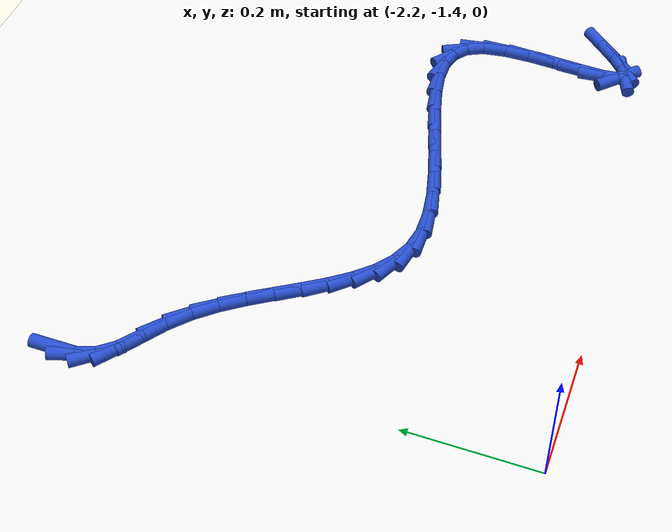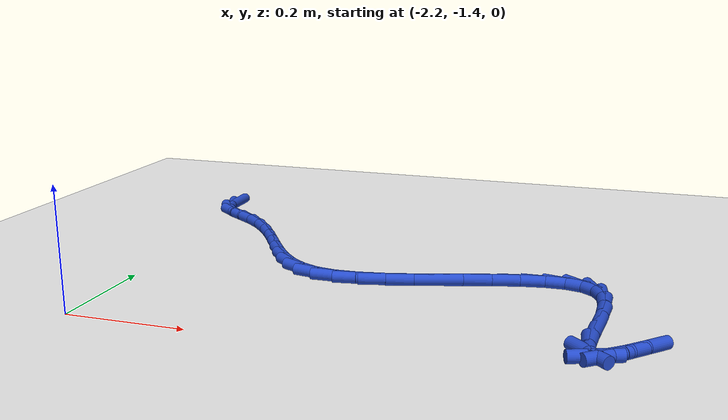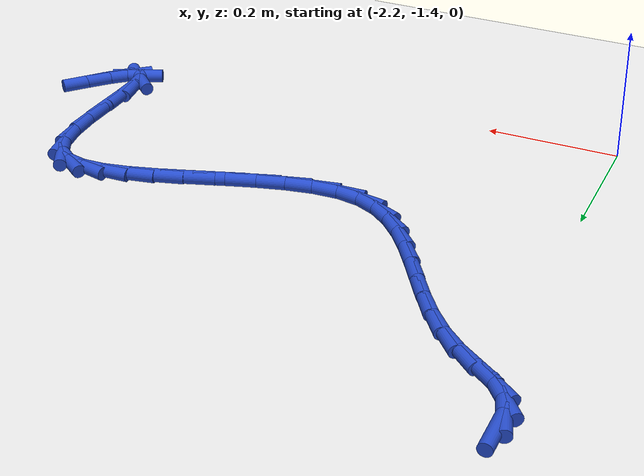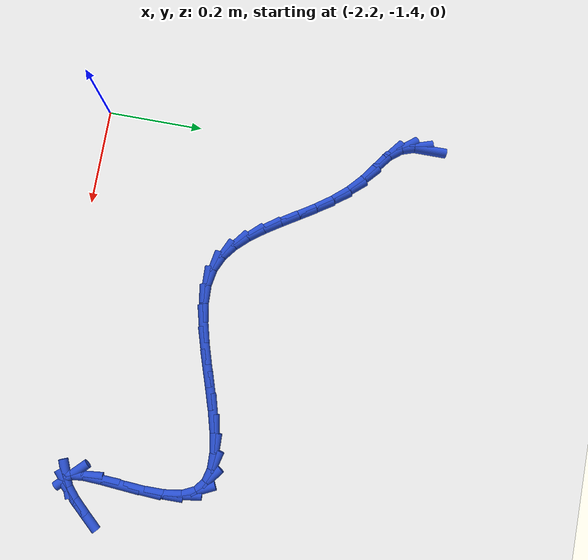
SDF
<sdf version="1.6">
 <world name="default">
  <model name="ground_plane">
   <static>1</static>
   <link name="link">
    <collision name="collision">
     <geometry><plane><normal>0 0 1</normal><size>100 100</size></plane></geometry>
     <surface><friction><ode><mu>100</mu><mu2>50</mu2></ode></friction></surface>
    </collision>
    <visual name="visual">
     <cast_shadows>0</cast_shadows>
     <geometry><plane><normal>0 0 1</normal><size>100 100</size></plane></geometry>
     <material>
      <script><uri>file://media/materials/scripts/gazebo.material</uri><name>Gazebo/WhiteGlow</name></script>
     </material>
    </visual>
   </link>
  </model>
  <model name="line">
   <link name="link_133">
    <pose>-2.2366250145057704 -0.7151494093226063 0.01 0 1.57 -1.5692445474474548</pose>
    <collision name="collision">
     <geometry><cylinder><radius>0.01</radius><length>0.08</length></cylinder></geometry>
    </collision>
    <visual name="visual">
     <material>
      <script><name>Gazebo/Blue</name><uri>file://media/materials/scripts/gazebo.material</uri></script>
     </material>
     <geometry><cylinder><radius>0.01</radius><length>0.08</length></cylinder></geometry>
    </visual>
   </link>
   <link name="link_134">
    <pose>-2.2365803930774857 -0.7439043947152794 0.01 0 1.57 -1.2466053743810555</pose>
    <collision name="collision">
     <geometry><cylinder><radius>0.01</radius><length>0.08</length></cylinder></geometry>
    </collision>
    <visual name="visual">
     <material>
      <script><name>Gazebo/Blue</name><uri>file://media/materials/scripts/gazebo.material</uri></script>
     </material>
     <geometry><cylinder><radius>0.01</radius><length>0.08</length></cylinder></geometry>
    </visual>
   </link>
   <link name="link_135">
    <pose>-2.227726745637273 -0.7702508427279782 0.01 0 1.57 -0.8972820059389349</pose>
    <collision name="collision">
     <geometry><cylinder><radius>0.01</radius><length>0.08</length></cylinder></geometry>
    </collision>
    <visual name="visual">
     <material>
      <script><name>Gazebo/Blue</name><uri>file://media/materials/scripts/gazebo.material</uri></script>
     </material>
     <geometry><cylinder><radius>0.01</radius><length>0.08</length></cylinder></geometry>
    </visual>
   </link>
   <link name="link_136">
    <pose>-2.2088519506199886 -0.7939037552160907 0.01 0 1.57 -0.6584980043833265</pose>
    <collision name="collision">
     <geometry><cylinder><radius>0.01</radius><length>0.08</length></cylinder></geometry>
    </collision>
    <visual name="visual">
     <material>
      <script><name>Gazebo/Blue</name><uri>file://media/materials/scripts/gazebo.material</uri></script>
     </material>
     <geometry><cylinder><radius>0.01</radius><length>0.08</length></cylinder></geometry>
    </visual>
   </link>
   <link name="link_137">
    <pose>-2.1808499766516505 -0.8155689106839015 0.01 0 1.57 -0.6221268888780248</pose>
    <collision name="collision">
     <geometry><cylinder><radius>0.01</radius><length>0.08</length></cylinder></geometry>
    </collision>
    <visual name="visual">
     <material>
      <script><name>Gazebo/Blue</name><uri>file://media/materials/scripts/gazebo.material</uri></script>
     </material>
     <geometry><cylinder><radius>0.01</radius><length>0.08</length></cylinder></geometry>
    </visual>
   </link>
   <link name="link_138">
    <pose>-2.149332008401282 -0.8381712269312542 0.01 0 1.57 -0.7319749299900761</pose>
    <collision name="collision">
     <geometry><cylinder><radius>0.01</radius><length>0.08</length></cylinder></geometry>
    </collision>
    <visual name="visual">
     <material>
      <script><name>Gazebo/Blue</name><uri>file://media/materials/scripts/gazebo.material</uri></script>
     </material>
     <geometry><cylinder><radius>0.01</radius><length>0.08</length></cylinder></geometry>
    </visual>
   </link>
   <link name="link_139">
    <pose>-2.1199595351899005 -0.864561819518987 0.01 0 1.57 -0.8591654456248967</pose>
    <collision name="collision">
     <geometry><cylinder><radius>0.01</radius><length>0.08</length></cylinder></geometry>
    </collision>
    <visual name="visual">
     <material>
      <script><name>Gazebo/Blue</name><uri>file://media/materials/scripts/gazebo.material</uri></script>
     </material>
     <geometry><cylinder><radius>0.01</radius><length>0.08</length></cylinder></geometry>
    </visual>
   </link>
   <link name="link_140">
    <pose>-2.0939245867542504 -0.8947518731059072 0.01 0 1.57 -0.9466845832324181</pose>
    <collision name="collision">
     <geometry><cylinder><radius>0.01</radius><length>0.08</length></cylinder></geometry>
    </collision>
    <visual name="visual">
     <material>
      <script><name>Gazebo/Blue</name><uri>file://media/materials/scripts/gazebo.material</uri></script>
     </material>
     <geometry><cylinder><radius>0.01</radius><length>0.08</length></cylinder></geometry>
    </visual>
   </link>
   <link name="link_141">
    <pose>-2.070374920947825 -0.92745362540121 0.01 0 1.57 -0.9969154474344316</pose>
    <collision name="collision">
     <geometry><cylinder><radius>0.01</radius><length>0.08</length></cylinder></geometry>
    </collision>
    <visual name="visual">
     <material>
      <script><name>Gazebo/Blue</name><uri>file://media/materials/scripts/gazebo.material</uri></script>
     </material>
     <geometry><cylinder><radius>0.01</radius><length>0.08</length></cylinder></geometry>
    </visual>
   </link>
   <link name="link_142">
    <pose>-2.0484477397865684 -0.9613726068492248 0.01 0 1.57 -1.011848469925706</pose>
    <collision name="collision">
     <geometry><cylinder><radius>0.01</radius><length>0.08</length></cylinder></geometry>
    </collision>
    <visual name="visual">
     <material>
      <script><name>Gazebo/Blue</name><uri>file://media/materials/scripts/gazebo.material</uri></script>
     </material>
     <geometry><cylinder><radius>0.01</radius><length>0.08</length></cylinder></geometry>
    </visual>
   </link>
   <link name="link_143">
    <pose>-2.0272802452864243 -0.9952143478942795 0.01 0 1.57 -0.9908552433839792</pose>
    <collision name="collision">
     <geometry><cylinder><radius>0.01</radius><length>0.08</length></cylinder></geometry>
    </collision>
    <visual name="visual">
     <material>
      <script><name>Gazebo/Blue</name><uri>file://media/materials/scripts/gazebo.material</uri></script>
     </material>
     <geometry><cylinder><radius>0.01</radius><length>0.08</length></cylinder></geometry>
    </visual>
   </link>
   <link name="link_144">
    <pose>-2.0060096394633358 -1.0276843789807026 0.01 0 1.57 -0.9297988799317273</pose>
    <collision name="collision">
     <geometry><cylinder><radius>0.01</radius><length>0.08</length></cylinder></geometry>
    </collision>
    <visual name="visual">
     <material>
      <script><name>Gazebo/Blue</name><uri>file://media/materials/scripts/gazebo.material</uri></script>
     </material>
     <geometry><cylinder><radius>0.01</radius><length>0.08</length></cylinder></geometry>
    </visual>
   </link>
   <link name="link_145">
    <pose>-1.983773124333247 -1.0574882305528208 0.01 0 1.57 -0.82100795259521</pose>
    <collision name="collision">
     <geometry><cylinder><radius>0.01</radius><length>0.08</length></cylinder></geometry>
    </collision>
    <visual name="visual">
     <material>
      <script><name>Gazebo/Blue</name><uri>file://media/materials/scripts/gazebo.material</uri></script>
     </material>
     <geometry><cylinder><radius>0.01</radius><length>0.08</length></cylinder></geometry>
    </visual>
   </link>
   <link name="link_146">
    <pose>-1.9597079019121024 -1.0833314330549628 0.01 0 1.57 -0.6558361551558048</pose>
    <collision name="collision">
     <geometry><cylinder><radius>0.01</radius><length>0.08</length></cylinder></geometry>
    </collision>
    <visual name="visual">
     <material>
      <script><name>Gazebo/Blue</name><uri>file://media/materials/scripts/gazebo.material</uri></script>
     </material>
     <geometry><cylinder><radius>0.01</radius><length>0.08</length></cylinder></geometry>
    </visual>
   </link>
   <link name="link_147">
    <pose>-1.9329511742158452 -1.1039195169314573 0.01 0 1.57 -0.4337339137956587</pose>
    <collision name="collision">
     <geometry><cylinder><radius>0.01</radius><length>0.08</length></cylinder></geometry>
    </collision>
    <visual name="visual">
     <material>
      <script><name>Gazebo/Blue</name><uri>file://media/materials/scripts/gazebo.material</uri></script>
     </material>
     <geometry><cylinder><radius>0.01</radius><length>0.08</length></cylinder></geometry>
    </visual>
   </link>
   <link name="link_148">
    <pose>-1.9026401432604185 -1.1179580126266315 0.01 0 1.57 -0.17887924268030897</pose>
    <collision name="collision">
     <geometry><cylinder><radius>0.01</radius><length>0.08</length></cylinder></geometry>
    </collision>
    <visual name="visual">
     <material>
      <script><name>Gazebo/Blue</name><uri>file://media/materials/scripts/gazebo.material</uri></script>
     </material>
     <geometry><cylinder><radius>0.01</radius><length>0.08</length></cylinder></geometry>
    </visual>
   </link>
   <link name="link_149">
    <pose>-1.8679618052277498 -1.1242282686692375 0.01 0 1.57 0.03149683025813888</pose>
    <collision name="collision">
     <geometry><cylinder><radius>0.01</radius><length>0.08</length></cylinder></geometry>
    </collision>
    <visual name="visual">
     <material>
      <script><name>Gazebo/Blue</name><uri>file://media/materials/scripts/gazebo.material</uri></script>
     </material>
     <geometry><cylinder><radius>0.01</radius><length>0.08</length></cylinder></geometry>
    </visual>
   </link>
   <link name="link_150">
    <pose>-1.8290828199780818 -1.1230032987661671 0.01 0 1.57 0.16701370648595656</pose>
    <collision name="collision">
     <geometry><cylinder><radius>0.01</radius><length>0.08</length></cylinder></geometry>
    </collision>
    <visual name="visual">
     <material>
      <script><name>Gazebo/Blue</name><uri>file://media/materials/scripts/gazebo.material</uri></script>
     </material>
     <geometry><cylinder><radius>0.01</radius><length>0.08</length></cylinder></geometry>
    </visual>
   </link>
   <link name="link_151">
    <pose>-1.7870654871575287 -1.1159198445141028 0.01 0 1.57 0.25009705253246317</pose>
    <collision name="collision">
     <geometry><cylinder><radius>0.01</radius><length>0.08</length></cylinder></geometry>
    </collision>
    <visual name="visual">
     <material>
      <script><name>Gazebo/Blue</name><uri>file://media/materials/scripts/gazebo.material</uri></script>
     </material>
     <geometry><cylinder><radius>0.01</radius><length>0.08</length></cylinder></geometry>
    </visual>
   </link>
   <link name="link_152">
    <pose>-1.7430050534292332 -1.104664813621949 0.01 0 1.57 0.29628501822258535</pose>
    <collision name="collision">
     <geometry><cylinder><radius>0.01</radius><length>0.08</length></cylinder></geometry>
    </collision>
    <visual name="visual">
     <material>
      <script><name>Gazebo/Blue</name><uri>file://media/materials/scripts/gazebo.material</uri></script>
     </material>
     <geometry><cylinder><radius>0.01</radius><length>0.08</length></cylinder></geometry>
    </visual>
   </link>
   <link name="link_153">
    <pose>-1.6979967654563382 -1.0909251137986118 0.01 0 1.57 0.31337822332887705</pose>
    <collision name="collision">
     <geometry><cylinder><radius>0.01</radius><length>0.08</length></cylinder></geometry>
    </collision>
    <visual name="visual">
     <material>
      <script><name>Gazebo/Blue</name><uri>file://media/materials/scripts/gazebo.material</uri></script>
     </material>
     <geometry><cylinder><radius>0.01</radius><length>0.08</length></cylinder></geometry>
    </visual>
   </link>
   <link name="link_154">
    <pose>-1.6531358699019898 -1.0763876527529976 0.01 0 1.57 0.3032526247815383</pose>
    <collision name="collision">
     <geometry><cylinder><radius>0.01</radius><length>0.08</length></cylinder></geometry>
    </collision>
    <visual name="visual">
     <material>
      <script><name>Gazebo/Blue</name><uri>file://media/materials/scripts/gazebo.material</uri></script>
     </material>
     <geometry><cylinder><radius>0.01</radius><length>0.08</length></cylinder></geometry>
    </visual>
   </link>
   <link name="link_155">
    <pose>-1.609517613429331 -1.0627393381940125 0.01 0 1.57 0.262052926328958</pose>
    <collision name="collision">
     <geometry><cylinder><radius>0.01</radius><length>0.08</length></cylinder></geometry>
    </collision>
    <visual name="visual">
     <material>
      <script><name>Gazebo/Blue</name><uri>file://media/materials/scripts/gazebo.material</uri></script>
     </material>
     <geometry><cylinder><radius>0.01</radius><length>0.08</length></cylinder></geometry>
    </visual>
   </link>
   <link name="link_156">
    <pose>-1.568237242701505 -1.0516670778305621 0.01 0 1.57 0.1780109264642716</pose>
    <collision name="collision">
     <geometry><cylinder><radius>0.01</radius><length>0.08</length></cylinder></geometry>
    </collision>
    <visual name="visual">
     <material>
      <script><name>Gazebo/Blue</name><uri>file://media/materials/scripts/gazebo.material</uri></script>
     </material>
     <geometry><cylinder><radius>0.01</radius><length>0.08</length></cylinder></geometry>
    </visual>
   </link>
   <link name="link_157">
    <pose>-1.5303900043816552 -1.0448577793715519 0.01 0 1.57 0.025788347462338917</pose>
    <collision name="collision">
     <geometry><cylinder><radius>0.01</radius><length>0.08</length></cylinder></geometry>
    </collision>
    <visual name="visual">
     <material>
      <script><name>Gazebo/Blue</name><uri>file://media/materials/scripts/gazebo.material</uri></script>
     </material>
     <geometry><cylinder><radius>0.01</radius><length>0.08</length></cylinder></geometry>
    </visual>
   </link>
   <link name="link_158">
    <pose>-1.4970711451329273 -1.0439983505258883 0.01 0 1.57 -0.23999530724652837</pose>
    <collision name="collision">
     <geometry><cylinder><radius>0.01</radius><length>0.08</length></cylinder></geometry>
    </collision>
    <visual name="visual">
     <material>
      <script><name>Gazebo/Blue</name><uri>file://media/materials/scripts/gazebo.material</uri></script>
     </material>
     <geometry><cylinder><radius>0.01</radius><length>0.08</length></cylinder></geometry>
    </visual>
   </link>
   <link name="link_159">
    <pose>-1.4693759116184641 -1.0507756990024775 0.01 0 1.57 -0.6546576454633587</pose>
    <collision name="collision">
     <geometry><cylinder><radius>0.01</radius><length>0.08</length></cylinder></geometry>
    </collision>
    <visual name="visual">
     <material>
      <script><name>Gazebo/Blue</name><uri>file://media/materials/scripts/gazebo.material</uri></script>
     </material>
     <geometry><cylinder><radius>0.01</radius><length>0.08</length></cylinder></geometry>
    </visual>
   </link>
   <link name="link_160">
    <pose>-1.4483995505014093 -1.0668767325102246 0.01 0 1.57 -1.1176745215975452</pose>
    <collision name="collision">
     <geometry><cylinder><radius>0.01</radius><length>0.08</length></cylinder></geometry>
    </collision>
    <visual name="visual">
     <material>
      <script><name>Gazebo/Blue</name><uri>file://media/materials/scripts/gazebo.material</uri></script>
     </material>
     <geometry><cylinder><radius>0.01</radius><length>0.08</length></cylinder></geometry>
    </visual>
   </link>
   <link name="link_161">
    <pose>-1.4352164406640682 -1.0939517130542862 0.01 0 1.57 -1.4224020403759348</pose>
    <collision name="collision">
     <geometry><cylinder><radius>0.01</radius><length>0.08</length></cylinder></geometry>
    </collision>
    <visual name="visual">
     <material>
      <script><name>Gazebo/Blue</name><uri>file://media/materials/scripts/gazebo.material</uri></script>
     </material>
     <geometry><cylinder><radius>0.01</radius><length>0.08</length></cylinder></geometry>
    </visual>
   </link>
   <link name="link_162">
    <pose>-1.4296183867838472 -1.1313985867508258 0.01 0 1.57 -1.5656028945857223</pose>
    <collision name="collision">
     <geometry><cylinder><radius>0.01</radius><length>0.08</length></cylinder></geometry>
    </collision>
    <visual name="visual">
     <material>
      <script><name>Gazebo/Blue</name><uri>file://media/materials/scripts/gazebo.material</uri></script>
     </material>
     <geometry><cylinder><radius>0.01</radius><length>0.08</length></cylinder></geometry>
    </visual>
   </link>
   <link name="link_163">
    <pose>-1.4293914605017655 -1.1750930517480729 0.01 0 1.57 1.5103212685681646</pose>
    <collision name="collision">
     <geometry><cylinder><radius>0.01</radius><length>0.08</length></cylinder></geometry>
    </collision>
    <visual name="visual">
     <material>
      <script><name>Gazebo/Blue</name><uri>file://media/materials/scripts/gazebo.material</uri></script>
     </material>
     <geometry><cylinder><radius>0.01</radius><length>0.08</length></cylinder></geometry>
    </visual>
   </link>
   <link name="link_164">
    <pose>-1.4321471067385783 -1.2206041459361705 0.01 0 1.57 1.4928678268059763</pose>
    <collision name="collision">
     <geometry><cylinder><radius>0.01</radius><length>0.08</length></cylinder></geometry>
    </collision>
    <visual name="visual">
     <material>
      <script><name>Gazebo/Blue</name><uri>file://media/materials/scripts/gazebo.material</uri></script>
     </material>
     <geometry><cylinder><radius>0.01</radius><length>0.08</length></cylinder></geometry>
    </visual>
   </link>
   <link name="link_165">
    <pose>-1.4354967704150423 -1.2635009072052614 0.01 0 1.57 1.527446585576137</pose>
    <collision name="collision">
     <geometry><cylinder><radius>0.01</radius><length>0.08</length></cylinder></geometry>
    </collision>
    <visual name="visual">
     <material>
      <script><name>Gazebo/Blue</name><uri>file://media/materials/scripts/gazebo.material</uri></script>
     </material>
     <geometry><cylinder><radius>0.01</radius><length>0.08</length></cylinder></geometry>
    </visual>
   </link>
   <link name="link_166">
    <pose>-1.4370518964519128 -1.2993523734454888 0.01 0 1.57 -1.4633980722920323</pose>
    <collision name="collision">
     <geometry><cylinder><radius>0.01</radius><length>0.08</length></cylinder></geometry>
    </collision>
    <visual name="visual">
     <material>
      <script><name>Gazebo/Blue</name><uri>file://media/materials/scripts/gazebo.material</uri></script>
     </material>
     <geometry><cylinder><radius>0.01</radius><length>0.08</length></cylinder></geometry>
    </visual>
   </link>
   <link name="link_167">
    <pose>-1.4344239297699468 -1.3237275825469945 0.01 0 1.57 -0.7789992896218415</pose>
    <collision name="collision">
     <geometry><cylinder><radius>0.01</radius><length>0.08</length></cylinder></geometry>
    </collision>
    <visual name="visual">
     <material>
      <script><name>Gazebo/Blue</name><uri>file://media/materials/scripts/gazebo.material</uri></script>
     </material>
     <geometry><cylinder><radius>0.01</radius><length>0.08</length></cylinder></geometry>
    </visual>
   </link>
   <link name="link_168">
    <pose>-1.4254114914197658 -1.3326254137786118 0.01 0 1.57 0.37336265242633576</pose>
    <collision name="collision">
     <geometry><cylinder><radius>0.01</radius><length>0.08</length></cylinder></geometry>
    </collision>
    <visual name="visual">
     <material>
      <script><name>Gazebo/Blue</name><uri>file://media/materials/scripts/gazebo.material</uri></script>
     </material>
     <geometry><cylinder><radius>0.01</radius><length>0.08</length></cylinder></geometry>
    </visual>
   </link>
   <link name="link_169">
    <pose>-1.4097488024792302 -1.3264897629019272 0.01 0 1.57 0.7012205339738832</pose>
    <collision name="collision">
     <geometry><cylinder><radius>0.01</radius><length>0.08</length></cylinder></geometry>
    </collision>
    <visual name="visual">
     <material>
      <script><name>Gazebo/Blue</name><uri>file://media/materials/scripts/gazebo.material</uri></script>
     </material>
     <geometry><cylinder><radius>0.01</radius><length>0.08</length></cylinder></geometry>
    </visual>
   </link>
   <link name="link_170">
    <pose>-1.3883134719269767 -1.3083902634368647 0.01 0 1.57 0.7974879589639084</pose>
    <collision name="collision">
     <geometry><cylinder><radius>0.01</radius><length>0.08</length></cylinder></geometry>
    </collision>
    <visual name="visual">
     <material>
      <script><name>Gazebo/Blue</name><uri>file://media/materials/scripts/gazebo.material</uri></script>
     </material>
     <geometry><cylinder><radius>0.01</radius><length>0.08</length></cylinder></geometry>
    </visual>
   </link>
   <link name="link_171">
    <pose>-1.3619979446152828 -1.2814306188052285 0.01 0 1.57 0.8236662292860151</pose>
    <collision name="collision">
     <geometry><cylinder><radius>0.01</radius><length>0.08</length></cylinder></geometry>
    </collision>
    <visual name="visual">
     <material>
      <script><name>Gazebo/Blue</name><uri>file://media/materials/scripts/gazebo.material</uri></script>
     </material>
     <geometry><cylinder><radius>0.01</radius><length>0.08</length></cylinder></geometry>
    </visual>
   </link>
  </model>
 </world>
</sdf>
